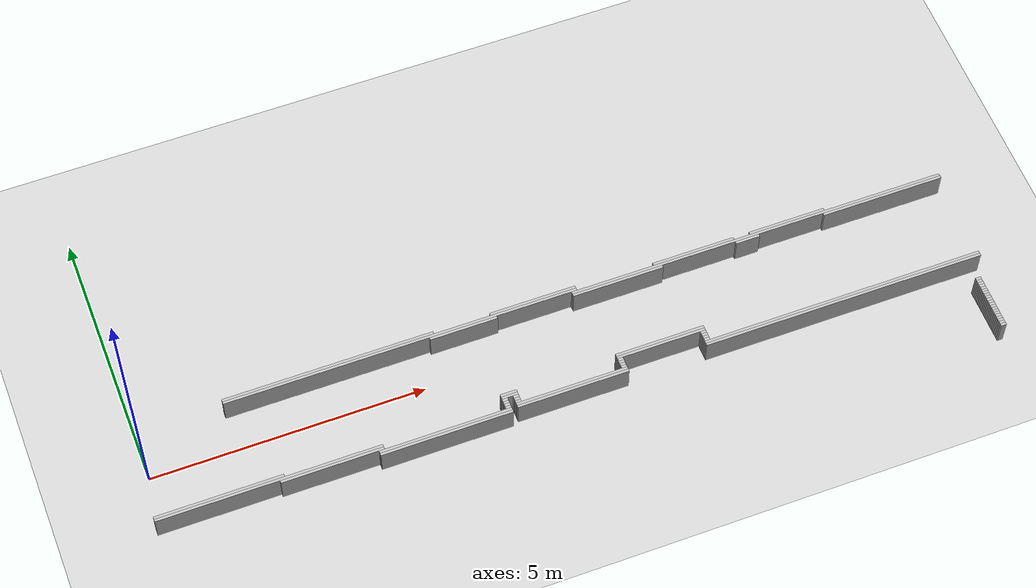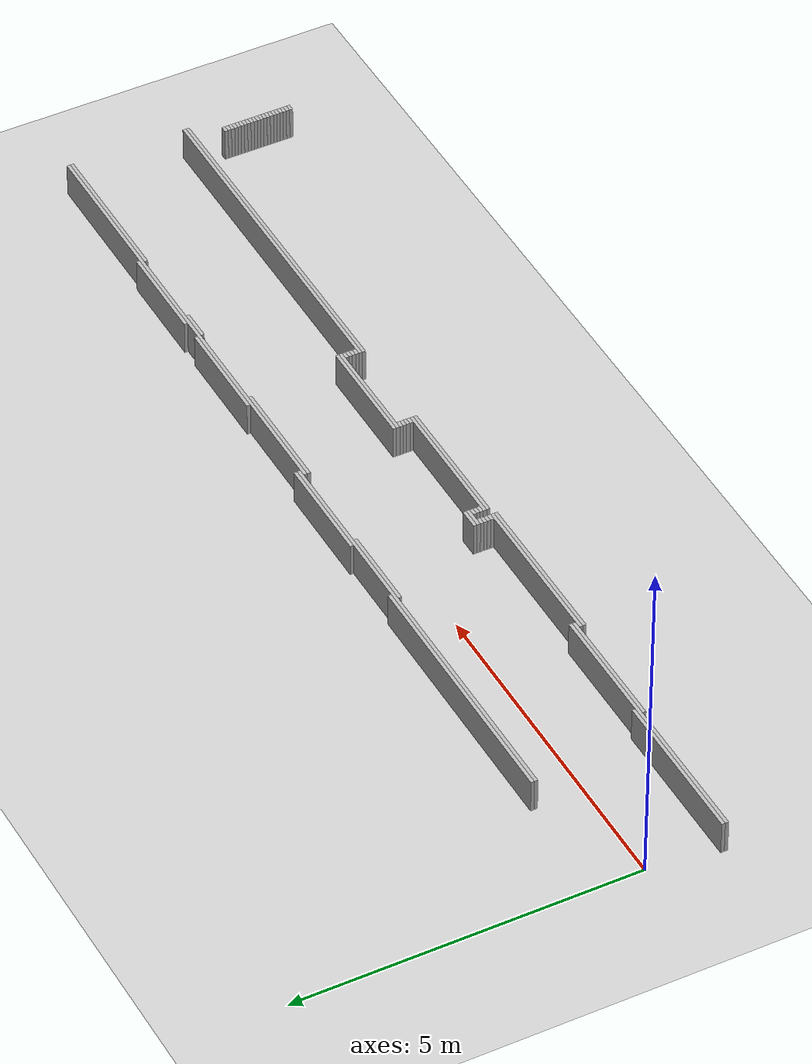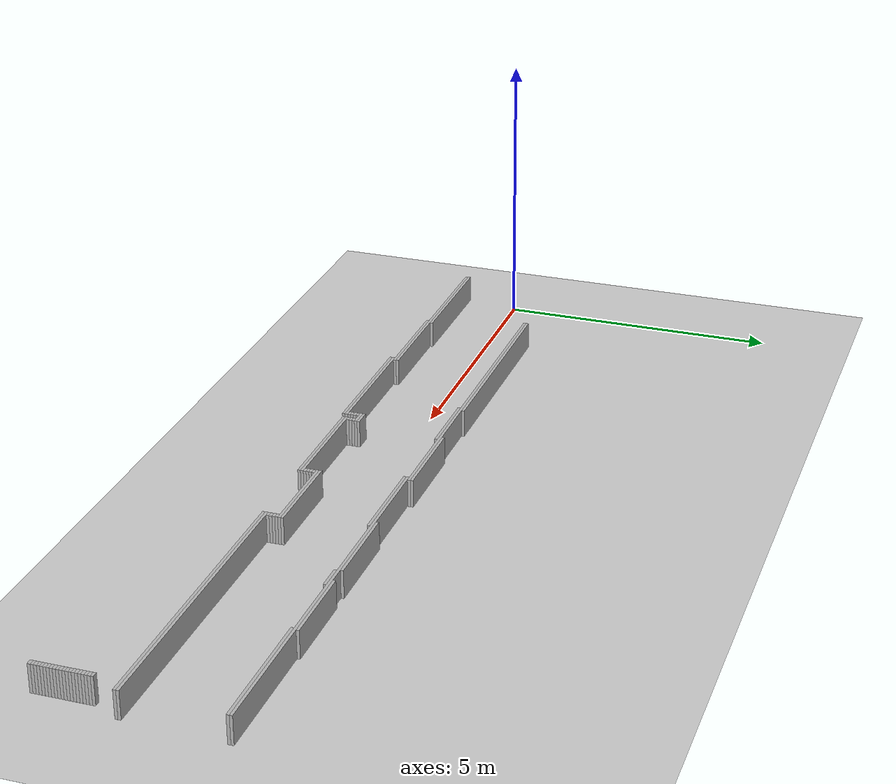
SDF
<sdf version="1.6">
 <world name="optimized_map_world">
  <include><uri>model://sun</uri></include>
  <include><uri>model://ground_plane</uri></include>
  <model name="obstacle_7">
   <static>true</static>
   <link name="link">
    <collision name="collision"><geometry><box><size>3.85 0.05 0.5</size></box></geometry></collision>
    <visual name="visual"><geometry><box><size>3.85 0.05 0.5</size></box></geometry></visual>
   </link>
   <pose>3.5000000000000036 0.75 0.25 0 0 0</pose>
  </model>
  <model name="obstacle_8">
   <static>true</static>
   <link name="link">
    <collision name="collision"><geometry><box><size>1.6 0.05 0.5</size></box></geometry></collision>
    <visual name="visual"><geometry><box><size>1.6 0.05 0.5</size></box></geometry></visual>
   </link>
   <pose>7.275000000000002 0.75 0.25 0 0 0</pose>
  </model>
  <model name="obstacle_12">
   <static>true</static>
   <link name="link">
    <collision name="collision"><geometry><box><size>6.5 0.05 0.5</size></box></geometry></collision>
    <visual name="visual"><geometry><box><size>6.5 0.05 0.5</size></box></geometry></visual>
   </link>
   <pose>4.825000000000003 0.6999999999999993 0.25 0 0 0</pose>
  </model>
  <model name="obstacle_13">
   <static>true</static>
   <link name="link">
    <collision name="collision"><geometry><box><size>1.55 0.05 0.5</size></box></geometry></collision>
    <visual name="visual"><geometry><box><size>1.55 0.05 0.5</size></box></geometry></visual>
   </link>
   <pose>10.3 0.6999999999999993 0.25 0 0 0</pose>
  </model>
  <model name="obstacle_14">
   <static>true</static>
   <link name="link">
    <collision name="collision">
     <geometry><box><size>1.4500000000000002 0.05 0.5</size></box></geometry>
    </collision>
    <visual name="visual"><geometry><box><size>1.4500000000000002 0.05 0.5</size></box></geometry></visual>
   </link>
   <pose>12.100000000000001 0.6999999999999993 0.25 0 0 0</pose>
  </model>
  <model name="obstacle_17">
   <static>true</static>
   <link name="link">
    <collision name="collision"><geometry><box><size>1.25 0.05 0.5</size></box></geometry></collision>
    <visual name="visual"><geometry><box><size>1.25 0.05 0.5</size></box></geometry></visual>
   </link>
   <pose>5.950000000000003 0.6500000000000021 0.25 0 0 0</pose>
  </model>
  <model name="obstacle_18">
   <static>true</static>
   <link name="link">
    <collision name="collision">
     <geometry><box><size>7.1000000000000005 0.05 0.5</size></box></geometry>
    </collision>
    <visual name="visual"><geometry><box><size>7.1000000000000005 0.05 0.5</size></box></geometry></visual>
   </link>
   <pose>11.525000000000002 0.6500000000000021 0.25 0 0 0</pose>
  </model>
  <model name="obstacle_22">
   <static>true</static>
   <link name="link">
    <collision name="collision">
     <geometry><box><size>1.7000000000000002 0.05 0.5</size></box></geometry>
    </collision>
    <visual name="visual"><geometry><box><size>1.7000000000000002 0.05 0.5</size></box></geometry></visual>
   </link>
   <pose>8.825000000000003 0.6000000000000014 0.25 0 0 0</pose>
  </model>
  <model name="obstacle_23">
   <static>true</static>
   <link name="link">
    <collision name="collision"><geometry><box><size>0.45 0.05 0.5</size></box></geometry></collision>
    <visual name="visual"><geometry><box><size>0.45 0.05 0.5</size></box></geometry></visual>
   </link>
   <pose>11.3 0.6000000000000014 0.25 0 0 0</pose>
  </model>
  <model name="obstacle_24">
   <static>true</static>
   <link name="link">
    <collision name="collision">
     <geometry><box><size>2.3000000000000003 0.05 0.5</size></box></geometry>
    </collision>
    <visual name="visual"><geometry><box><size>2.3000000000000003 0.05 0.5</size></box></geometry></visual>
   </link>
   <pose>13.925 0.6000000000000014 0.25 0 0 0</pose>
  </model>
  <model name="obstacle_81">
   <static>true</static>
   <link name="link">
    <collision name="collision">
     <geometry><box><size>1.6500000000000001 0.05 0.5</size></box></geometry>
    </collision>
    <visual name="visual"><geometry><box><size>1.6500000000000001 0.05 0.5</size></box></geometry></visual>
   </link>
   <pose>9.05 -0.8000000000000007 0.25 0 0 0</pose>
  </model>
  <model name="obstacle_84">
   <static>true</static>
   <link name="link">
    <collision name="collision">
     <geometry><box><size>0.30000000000000004 0.05 0.5</size></box></geometry>
    </collision>
    <visual name="visual"><geometry><box><size>0.30000000000000004 0.05 0.5</size></box></geometry></visual>
   </link>
   <pose>6.225000000000001 -0.8499999999999979 0.25 0 0 0</pose>
  </model>
  <model name="obstacle_85">
   <static>true</static>
   <link name="link">
    <collision name="collision">
     <geometry><box><size>1.6500000000000001 0.05 0.5</size></box></geometry>
    </collision>
    <visual name="visual"><geometry><box><size>1.6500000000000001 0.05 0.5</size></box></geometry></visual>
   </link>
   <pose>9.05 -0.8499999999999979 0.25 0 0 0</pose>
  </model>
  <model name="obstacle_88">
   <static>true</static>
   <link name="link">
    <collision name="collision">
     <geometry><box><size>0.30000000000000004 0.05 0.5</size></box></geometry>
    </collision>
    <visual name="visual"><geometry><box><size>0.30000000000000004 0.05 0.5</size></box></geometry></visual>
   </link>
   <pose>6.225000000000001 -0.8999999999999986 0.25 0 0 0</pose>
  </model>
  <model name="obstacle_89">
   <static>true</static>
   <link name="link">
    <collision name="collision"><geometry><box><size>0.1 0.05 0.5</size></box></geometry></collision>
    <visual name="visual"><geometry><box><size>0.1 0.05 0.5</size></box></geometry></visual>
   </link>
   <pose>8.275000000000002 -0.8999999999999986 0.25 0 0 0</pose>
  </model>
  <model name="obstacle_90">
   <static>true</static>
   <link name="link">
    <collision name="collision"><geometry><box><size>0.1 0.05 0.5</size></box></geometry></collision>
    <visual name="visual"><geometry><box><size>0.1 0.05 0.5</size></box></geometry></visual>
   </link>
   <pose>9.825000000000003 -0.8999999999999986 0.25 0 0 0</pose>
  </model>
  <model name="obstacle_93">
   <static>true</static>
   <link name="link">
    <collision name="collision"><geometry><box><size>0.1 0.05 0.5</size></box></geometry></collision>
    <visual name="visual"><geometry><box><size>0.1 0.05 0.5</size></box></geometry></visual>
   </link>
   <pose>6.1250000000000036 -0.9499999999999993 0.25 0 0 0</pose>
  </model>
  <model name="obstacle_94">
   <static>true</static>
   <link name="link">
    <collision name="collision"><geometry><box><size>0.1 0.05 0.5</size></box></geometry></collision>
    <visual name="visual"><geometry><box><size>0.1 0.05 0.5</size></box></geometry></visual>
   </link>
   <pose>6.325000000000003 -0.9499999999999993 0.25 0 0 0</pose>
  </model>
  <model name="obstacle_95">
   <static>true</static>
   <link name="link">
    <collision name="collision"><geometry><box><size>0.1 0.05 0.5</size></box></geometry></collision>
    <visual name="visual"><geometry><box><size>0.1 0.05 0.5</size></box></geometry></visual>
   </link>
   <pose>8.275000000000002 -0.9499999999999993 0.25 0 0 0</pose>
  </model>
  <model name="obstacle_96">
   <static>true</static>
   <link name="link">
    <collision name="collision"><geometry><box><size>0.1 0.05 0.5</size></box></geometry></collision>
    <visual name="visual"><geometry><box><size>0.1 0.05 0.5</size></box></geometry></visual>
   </link>
   <pose>9.825000000000003 -0.9499999999999993 0.25 0 0 0</pose>
  </model>
  <model name="obstacle_99">
   <static>true</static>
   <link name="link">
    <collision name="collision">
     <geometry><box><size>2.3000000000000003 0.05 0.5</size></box></geometry>
    </collision>
    <visual name="visual"><geometry><box><size>2.3000000000000003 0.05 0.5</size></box></geometry></visual>
   </link>
   <pose>0.9750000000000014 -1.0 0.25 0 0 0</pose>
  </model>
  <model name="obstacle_100">
   <static>true</static>
   <link name="link">
    <collision name="collision"><geometry><box><size>0.1 0.05 0.5</size></box></geometry></collision>
    <visual name="visual"><geometry><box><size>0.1 0.05 0.5</size></box></geometry></visual>
   </link>
   <pose>6.1250000000000036 -1.0 0.25 0 0 0</pose>
  </model>
  <model name="obstacle_101">
   <static>true</static>
   <link name="link">
    <collision name="collision"><geometry><box><size>0.1 0.05 0.5</size></box></geometry></collision>
    <visual name="visual"><geometry><box><size>0.1 0.05 0.5</size></box></geometry></visual>
   </link>
   <pose>6.325000000000003 -1.0 0.25 0 0 0</pose>
  </model>
  <model name="obstacle_102">
   <static>true</static>
   <link name="link">
    <collision name="collision"><geometry><box><size>0.1 0.05 0.5</size></box></geometry></collision>
    <visual name="visual"><geometry><box><size>0.1 0.05 0.5</size></box></geometry></visual>
   </link>
   <pose>8.275000000000002 -1.0 0.25 0 0 0</pose>
  </model>
  <model name="obstacle_103">
   <static>true</static>
   <link name="link">
    <collision name="collision"><geometry><box><size>0.1 0.05 0.5</size></box></geometry></collision>
    <visual name="visual"><geometry><box><size>0.1 0.05 0.5</size></box></geometry></visual>
   </link>
   <pose>9.825000000000003 -1.0 0.25 0 0 0</pose>
  </model>
  <model name="obstacle_106">
   <static>true</static>
   <link name="link">
    <collision name="collision"><geometry><box><size>4.05 0.05 0.5</size></box></geometry></collision>
    <visual name="visual"><geometry><box><size>4.05 0.05 0.5</size></box></geometry></visual>
   </link>
   <pose>1.8500000000000014 -1.0500000000000007 0.25 0 0 0</pose>
  </model>
  <model name="obstacle_107">
   <static>true</static>
   <link name="link">
    <collision name="collision"><geometry><box><size>0.1 0.05 0.5</size></box></geometry></collision>
    <visual name="visual"><geometry><box><size>0.1 0.05 0.5</size></box></geometry></visual>
   </link>
   <pose>6.1250000000000036 -1.0500000000000007 0.25 0 0 0</pose>
  </model>
  <model name="obstacle_108">
   <static>true</static>
   <link name="link">
    <collision name="collision"><geometry><box><size>0.1 0.05 0.5</size></box></geometry></collision>
    <visual name="visual"><geometry><box><size>0.1 0.05 0.5</size></box></geometry></visual>
   </link>
   <pose>6.325000000000003 -1.0500000000000007 0.25 0 0 0</pose>
  </model>
  <model name="obstacle_109">
   <static>true</static>
   <link name="link">
    <collision name="collision"><geometry><box><size>0.1 0.05 0.5</size></box></geometry></collision>
    <visual name="visual"><geometry><box><size>0.1 0.05 0.5</size></box></geometry></visual>
   </link>
   <pose>8.275000000000002 -1.0500000000000007 0.25 0 0 0</pose>
  </model>
  <model name="obstacle_110">
   <static>true</static>
   <link name="link">
    <collision name="collision"><geometry><box><size>0.1 0.05 0.5</size></box></geometry></collision>
    <visual name="visual"><geometry><box><size>0.1 0.05 0.5</size></box></geometry></visual>
   </link>
   <pose>9.825000000000003 -1.0500000000000007 0.25 0 0 0</pose>
  </model>
  <model name="obstacle_114">
   <static>true</static>
   <link name="link">
    <collision name="collision"><geometry><box><size>1.85 0.05 0.5</size></box></geometry></collision>
    <visual name="visual"><geometry><box><size>1.85 0.05 0.5</size></box></geometry></visual>
   </link>
   <pose>2.950000000000003 -1.0999999999999979 0.25 0 0 0</pose>
  </model>
  <model name="obstacle_115">
   <static>true</static>
   <link name="link">
    <collision name="collision"><geometry><box><size>0.1 0.05 0.5</size></box></geometry></collision>
    <visual name="visual"><geometry><box><size>0.1 0.05 0.5</size></box></geometry></visual>
   </link>
   <pose>6.1250000000000036 -1.0999999999999979 0.25 0 0 0</pose>
  </model>
  <model name="obstacle_116">
   <static>true</static>
   <link name="link">
    <collision name="collision">
     <geometry><box><size>2.0500000000000003 0.05 0.5</size></box></geometry>
    </collision>
    <visual name="visual"><geometry><box><size>2.0500000000000003 0.05 0.5</size></box></geometry></visual>
   </link>
   <pose>7.300000000000001 -1.0999999999999979 0.25 0 0 0</pose>
  </model>
  <model name="obstacle_117">
   <static>true</static>
   <link name="link">
    <collision name="collision"><geometry><box><size>5.25 0.05 0.5</size></box></geometry></collision>
    <visual name="visual"><geometry><box><size>5.25 0.05 0.5</size></box></geometry></visual>
   </link>
   <pose>12.400000000000002 -1.0999999999999979 0.25 0 0 0</pose>
  </model>
  <model name="obstacle_121">
   <static>true</static>
   <link name="link">
    <collision name="collision">
     <geometry><box><size>2.4000000000000004 0.05 0.5</size></box></geometry>
    </collision>
    <visual name="visual"><geometry><box><size>2.4000000000000004 0.05 0.5</size></box></geometry></visual>
   </link>
   <pose>4.975000000000001 -1.1499999999999986 0.25 0 0 0</pose>
  </model>
  <model name="obstacle_122">
   <static>true</static>
   <link name="link">
    <collision name="collision">
     <geometry><box><size>2.0500000000000003 0.05 0.5</size></box></geometry>
    </collision>
    <visual name="visual"><geometry><box><size>2.0500000000000003 0.05 0.5</size></box></geometry></visual>
   </link>
   <pose>7.300000000000001 -1.1499999999999986 0.25 0 0 0</pose>
  </model>
  <model name="obstacle_123">
   <static>true</static>
   <link name="link">
    <collision name="collision"><geometry><box><size>5.25 0.05 0.5</size></box></geometry></collision>
    <visual name="visual"><geometry><box><size>5.25 0.05 0.5</size></box></geometry></visual>
   </link>
   <pose>12.400000000000002 -1.1499999999999986 0.25 0 0 0</pose>
  </model>
  <model name="obstacle_127">
   <static>true</static>
   <link name="link">
    <collision name="collision">
     <geometry><box><size>2.4000000000000004 0.05 0.5</size></box></geometry>
    </collision>
    <visual name="visual"><geometry><box><size>2.4000000000000004 0.05 0.5</size></box></geometry></visual>
   </link>
   <pose>4.975000000000001 -1.1999999999999993 0.25 0 0 0</pose>
  </model>
  <model name="obstacle_160">
   <static>true</static>
   <link name="link">
    <collision name="collision"><geometry><box><size>0.1 0.05 0.5</size></box></geometry></collision>
    <visual name="visual"><geometry><box><size>0.1 0.05 0.5</size></box></geometry></visual>
   </link>
   <pose>14.775000000000002 -1.6000000000000014 0.25 0 0 0</pose>
  </model>
  <model name="obstacle_164">
   <static>true</static>
   <link name="link">
    <collision name="collision"><geometry><box><size>0.1 0.05 0.5</size></box></geometry></collision>
    <visual name="visual"><geometry><box><size>0.1 0.05 0.5</size></box></geometry></visual>
   </link>
   <pose>14.775000000000002 -1.6499999999999986 0.25 0 0 0</pose>
  </model>
  <model name="obstacle_168">
   <static>true</static>
   <link name="link">
    <collision name="collision"><geometry><box><size>0.1 0.05 0.5</size></box></geometry></collision>
    <visual name="visual"><geometry><box><size>0.1 0.05 0.5</size></box></geometry></visual>
   </link>
   <pose>14.775000000000002 -1.6999999999999993 0.25 0 0 0</pose>
  </model>
  <model name="obstacle_172">
   <static>true</static>
   <link name="link">
    <collision name="collision"><geometry><box><size>0.1 0.05 0.5</size></box></geometry></collision>
    <visual name="visual"><geometry><box><size>0.1 0.05 0.5</size></box></geometry></visual>
   </link>
   <pose>14.775000000000002 -1.75 0.25 0 0 0</pose>
  </model>
  <model name="obstacle_176">
   <static>true</static>
   <link name="link">
    <collision name="collision"><geometry><box><size>0.1 0.05 0.5</size></box></geometry></collision>
    <visual name="visual"><geometry><box><size>0.1 0.05 0.5</size></box></geometry></visual>
   </link>
   <pose>14.775000000000002 -1.8000000000000007 0.25 0 0 0</pose>
  </model>
  <model name="obstacle_180">
   <static>true</static>
   <link name="link">
    <collision name="collision"><geometry><box><size>0.1 0.05 0.5</size></box></geometry></collision>
    <visual name="visual"><geometry><box><size>0.1 0.05 0.5</size></box></geometry></visual>
   </link>
   <pose>14.775000000000002 -1.8500000000000014 0.25 0 0 0</pose>
  </model>
  <model name="obstacle_184">
   <static>true</static>
   <link name="link">
    <collision name="collision"><geometry><box><size>0.1 0.05 0.5</size></box></geometry></collision>
    <visual name="visual"><geometry><box><size>0.1 0.05 0.5</size></box></geometry></visual>
   </link>
   <pose>14.775000000000002 -1.8999999999999986 0.25 0 0 0</pose>
  </model>
  <model name="obstacle_188">
   <static>true</static>
   <link name="link">
    <collision name="collision"><geometry><box><size>0.1 0.05 0.5</size></box></geometry></collision>
    <visual name="visual"><geometry><box><size>0.1 0.05 0.5</size></box></geometry></visual>
   </link>
   <pose>14.775000000000002 -1.9499999999999993 0.25 0 0 0</pose>
  </model>
  <model name="obstacle_192">
   <static>true</static>
   <link name="link">
    <collision name="collision"><geometry><box><size>0.1 0.05 0.5</size></box></geometry></collision>
    <visual name="visual"><geometry><box><size>0.1 0.05 0.5</size></box></geometry></visual>
   </link>
   <pose>14.775000000000002 -2.0 0.25 0 0 0</pose>
  </model>
  <model name="obstacle_196">
   <static>true</static>
   <link name="link">
    <collision name="collision"><geometry><box><size>0.1 0.05 0.5</size></box></geometry></collision>
    <visual name="visual"><geometry><box><size>0.1 0.05 0.5</size></box></geometry></visual>
   </link>
   <pose>14.775000000000002 -2.0500000000000007 0.25 0 0 0</pose>
  </model>
  <model name="obstacle_200">
   <static>true</static>
   <link name="link">
    <collision name="collision"><geometry><box><size>0.1 0.05 0.5</size></box></geometry></collision>
    <visual name="visual"><geometry><box><size>0.1 0.05 0.5</size></box></geometry></visual>
   </link>
   <pose>14.775000000000002 -2.1000000000000014 0.25 0 0 0</pose>
  </model>
  <model name="obstacle_204">
   <static>true</static>
   <link name="link">
    <collision name="collision"><geometry><box><size>0.1 0.05 0.5</size></box></geometry></collision>
    <visual name="visual"><geometry><box><size>0.1 0.05 0.5</size></box></geometry></visual>
   </link>
   <pose>14.775000000000002 -2.1499999999999986 0.25 0 0 0</pose>
  </model>
  <model name="obstacle_208">
   <static>true</static>
   <link name="link">
    <collision name="collision"><geometry><box><size>0.1 0.05 0.5</size></box></geometry></collision>
    <visual name="visual"><geometry><box><size>0.1 0.05 0.5</size></box></geometry></visual>
   </link>
   <pose>14.775000000000002 -2.1999999999999993 0.25 0 0 0</pose>
  </model>
  <model name="obstacle_212">
   <static>true</static>
   <link name="link">
    <collision name="collision"><geometry><box><size>0.1 0.05 0.5</size></box></geometry></collision>
    <visual name="visual"><geometry><box><size>0.1 0.05 0.5</size></box></geometry></visual>
   </link>
   <pose>14.775000000000002 -2.25 0.25 0 0 0</pose>
  </model>
  <model name="obstacle_216">
   <static>true</static>
   <link name="link">
    <collision name="collision"><geometry><box><size>0.1 0.05 0.5</size></box></geometry></collision>
    <visual name="visual"><geometry><box><size>0.1 0.05 0.5</size></box></geometry></visual>
   </link>
   <pose>14.775000000000002 -2.3000000000000007 0.25 0 0 0</pose>
  </model>
  <model name="obstacle_220">
   <static>true</static>
   <link name="link">
    <collision name="collision"><geometry><box><size>0.1 0.05 0.5</size></box></geometry></collision>
    <visual name="visual"><geometry><box><size>0.1 0.05 0.5</size></box></geometry></visual>
   </link>
   <pose>14.775000000000002 -2.3500000000000014 0.25 0 0 0</pose>
  </model>
  <model name="obstacle_224">
   <static>true</static>
   <link name="link">
    <collision name="collision"><geometry><box><size>0.1 0.05 0.5</size></box></geometry></collision>
    <visual name="visual"><geometry><box><size>0.1 0.05 0.5</size></box></geometry></visual>
   </link>
   <pose>14.775000000000002 -2.3999999999999986 0.25 0 0 0</pose>
  </model>
  <model name="obstacle_228">
   <static>true</static>
   <link name="link">
    <collision name="collision"><geometry><box><size>0.1 0.05 0.5</size></box></geometry></collision>
    <visual name="visual"><geometry><box><size>0.1 0.05 0.5</size></box></geometry></visual>
   </link>
   <pose>14.775000000000002 -2.4499999999999993 0.25 0 0 0</pose>
  </model>
  <model name="obstacle_232">
   <static>true</static>
   <link name="link">
    <collision name="collision"><geometry><box><size>0.1 0.05 0.5</size></box></geometry></collision>
    <visual name="visual"><geometry><box><size>0.1 0.05 0.5</size></box></geometry></visual>
   </link>
   <pose>14.775000000000002 -2.5 0.25 0 0 0</pose>
  </model>
  <model name="obstacle_236">
   <static>true</static>
   <link name="link">
    <collision name="collision"><geometry><box><size>0.1 0.05 0.5</size></box></geometry></collision>
    <visual name="visual"><geometry><box><size>0.1 0.05 0.5</size></box></geometry></visual>
   </link>
   <pose>14.775000000000002 -2.5500000000000007 0.25 0 0 0</pose>
  </model>
  <model name="obstacle_240">
   <static>true</static>
   <link name="link">
    <collision name="collision"><geometry><box><size>0.1 0.05 0.5</size></box></geometry></collision>
    <visual name="visual"><geometry><box><size>0.1 0.05 0.5</size></box></geometry></visual>
   </link>
   <pose>14.775000000000002 -2.6000000000000014 0.25 0 0 0</pose>
  </model>
 </world>
</sdf>
